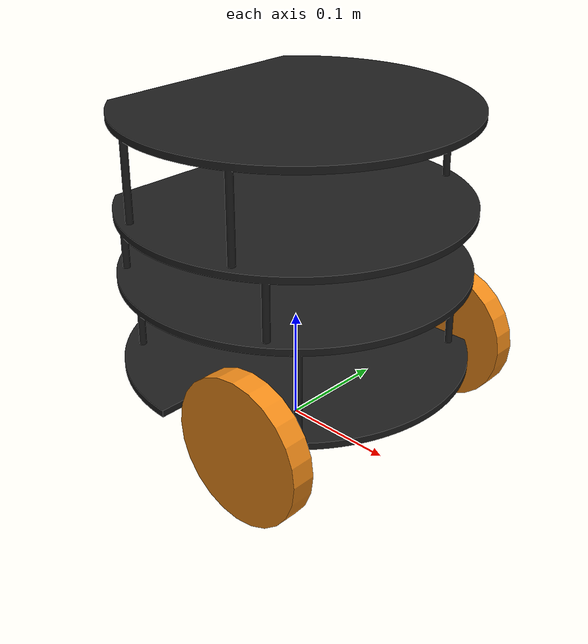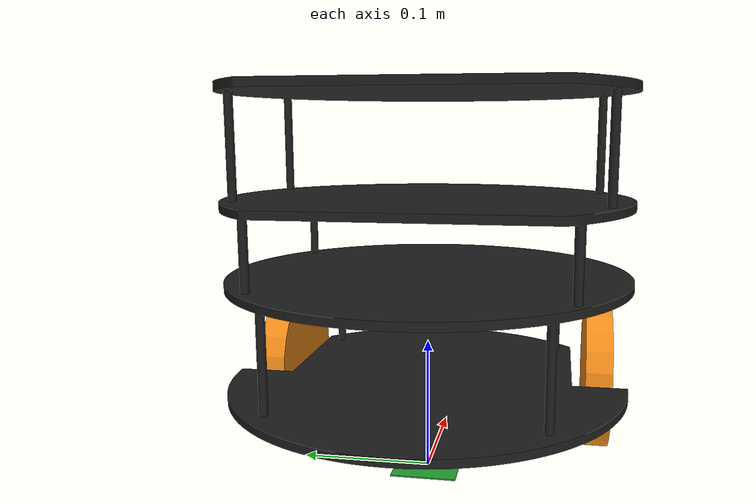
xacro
<?xml version="1.0"?>

<robot name="pi_robot" xmlns:xacro="http://ros.org/wiki/xacro">

   <!-- Include all component files -->
   <xacro:include filename="$(find rbx2_description)/urdf/materials.urdf.xacro" />
   <xacro:include filename="$(find rbx2_description)/urdf/pi_robot/pi_base.urdf.xacro" />

   <!-- Add the base and wheels -->
   <base name="base" color="Black"/>

</robot>

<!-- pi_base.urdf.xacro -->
<robot name="base" xmlns:xacro="http://ros.org/wiki/xacro">

  <!-- Define a number of dimensions using properties -->
  <property name="wheel_length" value="0.02032" />
  <property name="wheel_radius" value="0.06191" />
  <property name="wheel_offset_x" value="0.07" />
  <property name="wheel_offset_y" value="0.13" />
  <property name="wheel_offset_z" value="-0.0035" />

  <property name="base_radius" value="0.152" />
  <property name="base_height" value="0.241" />

  <property name="base_mesh_scale" value="0.0254" />

  <property name="PI" value="3.1415" />

  <!-- define a wheel -->
  <macro name="wheel" params="suffix parent reflect color">
    <joint name="${parent}_${suffix}_wheel_joint" type="continuous">
      <axis xyz="0 0 1" />
      <limit effort="100" velocity="100"/>
      <safety_controller k_velocity="10" />
      <origin xyz="${wheel_offset_x} ${reflect*wheel_offset_y} ${wheel_offset_z}" rpy="${reflect*1.57} 0 0" />
      <parent link="${parent}_link"/>
      <child link="${parent}_${suffix}_wheel_link"/>
    </joint>
    <link name="${parent}_${suffix}_wheel_link">
      <visual>
        <origin xyz="0 0 0" rpy="0 0 0" />
        <geometry>
          <cylinder radius="${wheel_radius}" length="${wheel_length}"/>
        </geometry>
        <material name="${color}" />
      </visual>
    </link>
  </macro>

  <!-- The base xacro macro -->
  <macro name="base" params="name color">
    <link name="${name}_link">
      <visual>
        <origin xyz="0 0 0" rpy="0 0 ${PI/2}" />
        <geometry>
           <mesh filename="package://rbx2_description/meshes/pi_robot/pi_robot_base.stl" scale="${base_mesh_scale} ${base_mesh_scale} ${base_mesh_scale}" />
        </geometry>
        <material name="${color}" />
      </visual>
      <collision>
        <origin xyz="0 0 ${base_height/2}" rpy="0 0 0" />
        <geometry>
           <cylinder radius="${base_radius}" length="${base_height}"/>
        </geometry>
      </collision>
    </link>
  </macro>

  <link name="base_footprint">
      <visual>
        <origin xyz="0 0 0" rpy="0 0 0" />
        <geometry>
          <box size="0.05 0.05 0.001" />
        </geometry>
        <material name="TransparentGreen" />
      </visual>
  </link>

  <joint name="base_joint" type="fixed">
    <origin xyz="0 0 ${wheel_radius - wheel_offset_z}" rpy="0 0 0" />
    <parent link="base_footprint"/>
    <child link="base_link" />
  </joint>

   <!-- Add the drive wheels -->
   <wheel parent="base" suffix="l" reflect="1" color="Orange"/>
   <wheel parent="base" suffix="r" reflect="-1" color="Orange"/>

</robot>
